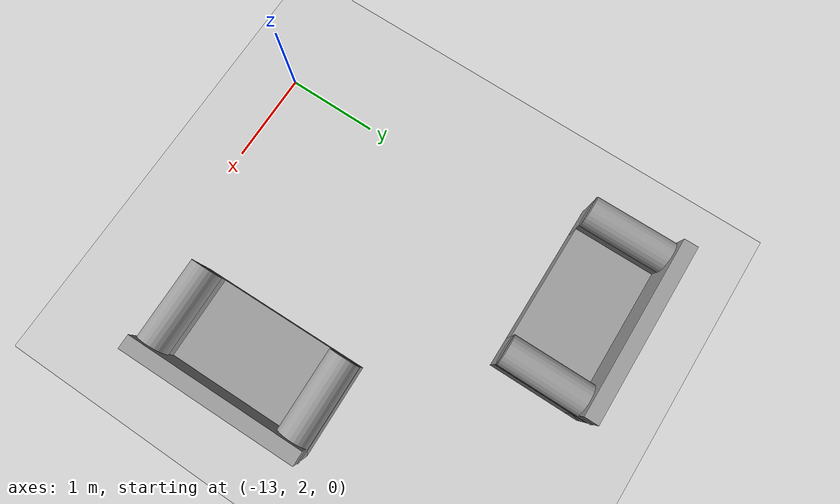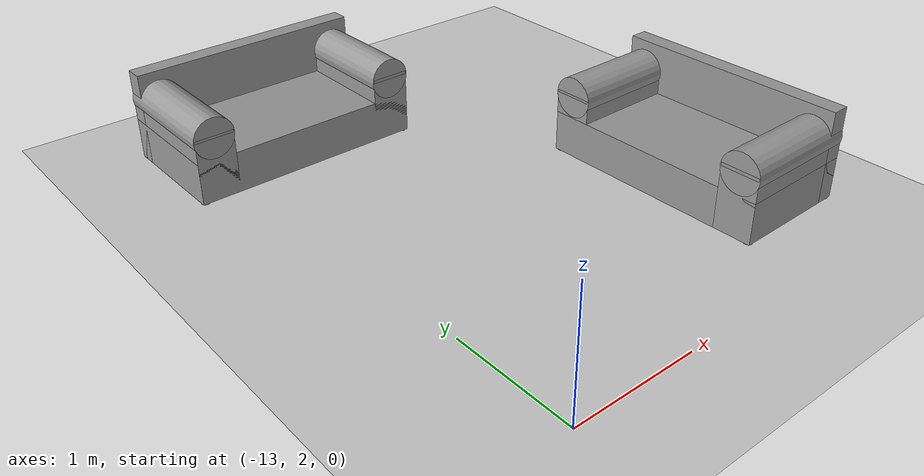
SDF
<sdf version="1.6">
 <world name="default">
  <model name="ground_plane">
   <static>1</static>
   <link name="link">
    <collision name="collision">
     <geometry><plane><normal>0 0 1</normal><size>100 100</size></plane></geometry>
     <surface>
      <contact><collide_bitmask>65535</collide_bitmask></contact>
      <friction><ode><mu>100</mu><mu2>50</mu2></ode></friction>
     </surface>
    </collision>
    <visual name="visual">
     <cast_shadows>0</cast_shadows>
     <geometry><plane><normal>0 0 1</normal><size>100 100</size></plane></geometry>
     <material>
      <script><uri>file://media/materials/scripts/gazebo.material</uri><name>Gazebo/Grey</name></script>
     </material>
    </visual>
   </link>
  </model>
  <model name="couch2.0_2">
   <link name="link_0">
    <pose>0 0.042624 -0.025032 0 -0 0</pose>
    <inertial>
     <mass>0.629351</mass>
     <inertia>
      <ixx>0.0582683</ixx>
      <ixy>0</ixy>
      <ixz>0</ixz>
      <iyy>0.192922</iyy>
      <iyz>0</iyz>
      <izz>0.239546</izz>
     </inertia>
    </inertial>
    <visual name="visual">
     <geometry><box><size>1.88878 1 0.33319</size></box></geometry>
     <material>
      <lighting>1</lighting>
      <script><uri>file://media/materials/scripts/gazebo.material</uri><name>Gazebo/Grey</name></script>
      <shader type="pixel"><normal_map>__default__</normal_map></shader>
      <ambient>0.3 0.3 0.3 1</ambient>
      <diffuse>0.7 0.7 0.7 1</diffuse>
      <specular>0.01 0.01 0.01 1</specular>
      <emissive>0 0 0 1</emissive>
     </material>
    </visual>
    <collision name="collision">
     <geometry><box><size>1.88878 1 0.33319</size></box></geometry>
     <surface>
      <friction>
       <ode><mu>1</mu><mu2>1</mu2><fdir1>0 0 0</fdir1><slip1>0</slip1><slip2>0</slip2></ode>
       <torsional>
        <coefficient>1</coefficient>
        <patch_radius>0</patch_radius>
        <surface_radius>0</surface_radius>
        <use_patch_radius>1</use_patch_radius>
        <ode><slip>0</slip></ode>
       </torsional>
      </friction>
      <bounce><restitution_coefficient>0</restitution_coefficient><threshold>1e+06</threshold></bounce>
      <contact>
       <collide_without_contact>0</collide_without_contact>
       <collide_without_contact_bitmask>1</collide_without_contact_bitmask>
       <collide_bitmask>1</collide_bitmask>
       <ode>
        <soft_cfm>0</soft_cfm>
        <soft_erp>0.2</soft_erp>
        <kp>1e+13</kp>
        <kd>1</kd>
        <max_vel>0.01</max_vel>
        <min_depth>0</min_depth>
       </ode>
       <bullet>
        <split_impulse>1</split_impulse>
        <split_impulse_penetration_threshold>-0.01</split_impulse_penetration_threshold>
        <soft_cfm>0</soft_cfm>
        <soft_erp>0.2</soft_erp>
        <kp>1e+13</kp>
        <kd>1</kd>
       </bullet>
      </contact>
     </surface>
    </collision>
   </link>
   <link name="link_0_clone">
    <pose>0 -0.383981 0.182545 0 -0 0</pose>
    <inertial>
     <mass>0.207466</mass>
     <inertia>
      <ixx>0.0100546</ixx>
      <ixy>0</ixy>
      <ixz>0</ixz>
      <iyy>0.0713599</iyy>
      <iyz>0</iyz>
      <izz>0.0620503</izz>
     </inertia>
    </inertial>
    <visual name="visual">
     <geometry><box><size>1.88878 0.146789 0.748345</size></box></geometry>
     <material>
      <lighting>1</lighting>
      <script><uri>file://media/materials/scripts/gazebo.material</uri><name>Gazebo/Grey</name></script>
      <shader type="pixel"><normal_map>__default__</normal_map></shader>
      <ambient>0.3 0.3 0.3 1</ambient>
      <diffuse>0.7 0.7 0.7 1</diffuse>
      <specular>0.01 0.01 0.01 1</specular>
      <emissive>0 0 0 1</emissive>
     </material>
    </visual>
    <collision name="collision">
     <geometry><box><size>1.88878 0.146789 0.748345</size></box></geometry>
     <surface>
      <friction>
       <ode><mu>1</mu><mu2>1</mu2><fdir1>0 0 0</fdir1><slip1>0</slip1><slip2>0</slip2></ode>
       <torsional>
        <coefficient>1</coefficient>
        <patch_radius>0</patch_radius>
        <surface_radius>0</surface_radius>
        <use_patch_radius>1</use_patch_radius>
        <ode><slip>0</slip></ode>
       </torsional>
      </friction>
      <bounce><restitution_coefficient>0</restitution_coefficient><threshold>1e+06</threshold></bounce>
      <contact>
       <collide_without_contact>0</collide_without_contact>
       <collide_without_contact_bitmask>1</collide_without_contact_bitmask>
       <collide_bitmask>1</collide_bitmask>
       <ode>
        <soft_cfm>0</soft_cfm>
        <soft_erp>0.2</soft_erp>
        <kp>1e+13</kp>
        <kd>1</kd>
        <max_vel>0.01</max_vel>
        <min_depth>0</min_depth>
       </ode>
       <bullet>
        <split_impulse>1</split_impulse>
        <split_impulse_penetration_threshold>-0.01</split_impulse_penetration_threshold>
        <soft_cfm>0</soft_cfm>
        <soft_erp>0.2</soft_erp>
        <kp>1e+13</kp>
        <kd>1</kd>
       </bullet>
      </contact>
     </surface>
    </collision>
   </link>
   <link name="link_1">
    <pose>-0.909335 -0.422322 -0.235214 0 -0 0</pose>
    <inertial>
     <mass>0.000500743</mass>
     <inertia>
      <ixx>5.85623e-07</ixx>
      <ixy>0</ixy>
      <ixz>0</ixz>
      <iyy>5.85623e-07</iyy>
      <iyz>0</iyz>
      <izz>3.07643e-07</izz>
     </inertia>
    </inertial>
    <visual name="visual">
     <geometry><cylinder><radius>0.0350535</radius><length>0.101724</length></cylinder></geometry>
     <material>
      <lighting>1</lighting>
      <script><uri>file://media/materials/scripts/gazebo.material</uri><name>Gazebo/Grey</name></script>
      <shader type="pixel"/>
      <ambient>0.3 0.3 0.3 1</ambient>
      <diffuse>0.7 0.7 0.7 1</diffuse>
      <specular>0.01 0.01 0.01 1</specular>
      <emissive>0 0 0 1</emissive>
     </material>
    </visual>
    <collision name="collision">
     <geometry><cylinder><radius>0.035053</radius><length>0.101724</length></cylinder></geometry>
     <surface>
      <friction>
       <ode><mu>1</mu><mu2>1</mu2><fdir1>0 0 0</fdir1><slip1>0</slip1><slip2>0</slip2></ode>
       <torsional>
        <coefficient>1</coefficient>
        <patch_radius>0</patch_radius>
        <surface_radius>0</surface_radius>
        <use_patch_radius>1</use_patch_radius>
        <ode><slip>0</slip></ode>
       </torsional>
      </friction>
      <bounce><restitution_coefficient>0</restitution_coefficient><threshold>1e+06</threshold></bounce>
      <contact>
       <collide_without_contact>0</collide_without_contact>
       <collide_without_contact_bitmask>1</collide_without_contact_bitmask>
       <collide_bitmask>1</collide_bitmask>
       <ode>
        <soft_cfm>0</soft_cfm>
        <soft_erp>0.2</soft_erp>
        <kp>1e+13</kp>
        <kd>1</kd>
        <max_vel>0.01</max_vel>
        <min_depth>0</min_depth>
       </ode>
       <bullet>
        <split_impulse>1</split_impulse>
        <split_impulse_penetration_threshold>-0.01</split_impulse_penetration_threshold>
        <soft_cfm>0</soft_cfm>
        <soft_erp>0.2</soft_erp>
        <kp>1e+13</kp>
        <kd>1</kd>
       </bullet>
      </contact>
     </surface>
    </collision>
   </link>
   <link name="link_1_clone">
    <pose>-0.909335 0.507571 -0.235214 0 -0 0</pose>
    <inertial>
     <mass>0.000500743</mass>
     <inertia>
      <ixx>5.85623e-07</ixx>
      <ixy>0</ixy>
      <ixz>0</ixz>
      <iyy>5.85623e-07</iyy>
      <iyz>0</iyz>
      <izz>3.07643e-07</izz>
     </inertia>
    </inertial>
    <visual name="visual">
     <geometry><cylinder><radius>0.0350535</radius><length>0.101724</length></cylinder></geometry>
     <material>
      <lighting>1</lighting>
      <script><uri>file://media/materials/scripts/gazebo.material</uri><name>Gazebo/Grey</name></script>
      <shader type="pixel"/>
      <ambient>0.3 0.3 0.3 1</ambient>
      <diffuse>0.7 0.7 0.7 1</diffuse>
      <specular>0.01 0.01 0.01 1</specular>
      <emissive>0 0 0 1</emissive>
     </material>
    </visual>
    <collision name="collision">
     <geometry><cylinder><radius>0.035053</radius><length>0.101724</length></cylinder></geometry>
     <surface>
      <friction>
       <ode><mu>1</mu><mu2>1</mu2><fdir1>0 0 0</fdir1><slip1>0</slip1><slip2>0</slip2></ode>
       <torsional>
        <coefficient>1</coefficient>
        <patch_radius>0</patch_radius>
        <surface_radius>0</surface_radius>
        <use_patch_radius>1</use_patch_radius>
        <ode><slip>0</slip></ode>
       </torsional>
      </friction>
      <bounce><restitution_coefficient>0</restitution_coefficient><threshold>1e+06</threshold></bounce>
      <contact>
       <collide_without_contact>0</collide_without_contact>
       <collide_without_contact_bitmask>1</collide_without_contact_bitmask>
       <collide_bitmask>1</collide_bitmask>
       <ode>
        <soft_cfm>0</soft_cfm>
        <soft_erp>0.2</soft_erp>
        <kp>1e+13</kp>
        <kd>1</kd>
        <max_vel>0.01</max_vel>
        <min_depth>0</min_depth>
       </ode>
       <bullet>
        <split_impulse>1</split_impulse>
        <split_impulse_penetration_threshold>-0.01</split_impulse_penetration_threshold>
        <soft_cfm>0</soft_cfm>
        <soft_erp>0.2</soft_erp>
        <kp>1e+13</kp>
        <kd>1</kd>
       </bullet>
      </contact>
     </surface>
    </collision>
   </link>
   <link name="link_1_clone_0">
    <pose>0.909335 -0.422322 -0.235214 0 -0 0</pose>
    <inertial>
     <mass>0.000500743</mass>
     <inertia>
      <ixx>5.85623e-07</ixx>
      <ixy>0</ixy>
      <ixz>0</ixz>
      <iyy>5.85623e-07</iyy>
      <iyz>0</iyz>
      <izz>3.07643e-07</izz>
     </inertia>
    </inertial>
    <visual name="visual">
     <geometry><cylinder><radius>0.0350535</radius><length>0.101724</length></cylinder></geometry>
     <material>
      <lighting>1</lighting>
      <script><uri>file://media/materials/scripts/gazebo.material</uri><name>Gazebo/Grey</name></script>
      <shader type="pixel"/>
      <ambient>0.3 0.3 0.3 1</ambient>
      <diffuse>0.7 0.7 0.7 1</diffuse>
      <specular>0.01 0.01 0.01 1</specular>
      <emissive>0 0 0 1</emissive>
     </material>
    </visual>
    <collision name="collision">
     <geometry><cylinder><radius>0.035053</radius><length>0.101724</length></cylinder></geometry>
     <surface>
      <friction>
       <ode><mu>1</mu><mu2>1</mu2><fdir1>0 0 0</fdir1><slip1>0</slip1><slip2>0</slip2></ode>
       <torsional>
        <coefficient>1</coefficient>
        <patch_radius>0</patch_radius>
        <surface_radius>0</surface_radius>
        <use_patch_radius>1</use_patch_radius>
        <ode><slip>0</slip></ode>
       </torsional>
      </friction>
      <bounce><restitution_coefficient>0</restitution_coefficient><threshold>1e+06</threshold></bounce>
      <contact>
       <collide_without_contact>0</collide_without_contact>
       <collide_without_contact_bitmask>1</collide_without_contact_bitmask>
       <collide_bitmask>1</collide_bitmask>
       <ode>
        <soft_cfm>0</soft_cfm>
        <soft_erp>0.2</soft_erp>
        <kp>1e+13</kp>
        <kd>1</kd>
        <max_vel>0.01</max_vel>
        <min_depth>0</min_depth>
       </ode>
       <bullet>
        <split_impulse>1</split_impulse>
        <split_impulse_penetration_threshold>-0.01</split_impulse_penetration_threshold>
        <soft_cfm>0</soft_cfm>
        <soft_erp>0.2</soft_erp>
        <kp>1e+13</kp>
        <kd>1</kd>
       </bullet>
      </contact>
     </surface>
    </collision>
   </link>
   <link name="link_1_clone_1">
    <pose>0.909335 0.507571 -0.235214 0 -0 0</pose>
    <inertial>
     <mass>0.000500743</mass>
     <inertia>
      <ixx>5.85623e-07</ixx>
      <ixy>0</ixy>
      <ixz>0</ixz>
      <iyy>5.85623e-07</iyy>
      <iyz>0</iyz>
      <izz>3.07643e-07</izz>
     </inertia>
    </inertial>
    <visual name="visual">
     <geometry><cylinder><radius>0.0350535</radius><length>0.101724</length></cylinder></geometry>
     <material>
      <lighting>1</lighting>
      <script><uri>file://media/materials/scripts/gazebo.material</uri><name>Gazebo/Grey</name></script>
      <shader type="pixel"/>
      <ambient>0.3 0.3 0.3 1</ambient>
      <diffuse>0.7 0.7 0.7 1</diffuse>
      <specular>0.01 0.01 0.01 1</specular>
      <emissive>0 0 0 1</emissive>
     </material>
    </visual>
    <collision name="collision">
     <geometry><cylinder><radius>0.035053</radius><length>0.101724</length></cylinder></geometry>
     <surface>
      <friction>
       <ode><mu>1</mu><mu2>1</mu2><fdir1>0 0 0</fdir1><slip1>0</slip1><slip2>0</slip2></ode>
       <torsional>
        <coefficient>1</coefficient>
        <patch_radius>0</patch_radius>
        <surface_radius>0</surface_radius>
        <use_patch_radius>1</use_patch_radius>
        <ode><slip>0</slip></ode>
       </torsional>
      </friction>
      <bounce><restitution_coefficient>0</restitution_coefficient><threshold>1e+06</threshold></bounce>
      <contact>
       <collide_without_contact>0</collide_without_contact>
       <collide_without_contact_bitmask>1</collide_without_contact_bitmask>
       <collide_bitmask>1</collide_bitmask>
       <ode>
        <soft_cfm>0</soft_cfm>
        <soft_erp>0.2</soft_erp>
        <kp>1e+13</kp>
        <kd>1</kd>
        <max_vel>0.01</max_vel>
        <min_depth>0</min_depth>
       </ode>
       <bullet>
        <split_impulse>1</split_impulse>
        <split_impulse_penetration_threshold>-0.01</split_impulse_penetration_threshold>
        <soft_cfm>0</soft_cfm>
        <soft_erp>0.2</soft_erp>
        <kp>1e+13</kp>
        <kd>1</kd>
       </bullet>
      </contact>
     </surface>
    </collision>
   </link>
   <link name="link_3">
    <pose>-0.787536 0.042624 0.075794 0 -0 0</pose>
    <inertial>
     <mass>0.167781</mass>
     <inertia>
      <ixx>0.0179813</ixx>
      <ixy>0</ixy>
      <ixz>0</ixz>
      <iyy>0.0053755</iyy>
      <iyz>0</iyz>
      <izz>0.0153577</izz>
     </inertia>
    </inertial>
    <visual name="visual">
     <geometry><box><size>0.313705 1 0.534841</size></box></geometry>
     <material>
      <lighting>1</lighting>
      <script><uri>file://media/materials/scripts/gazebo.material</uri><name>Gazebo/Grey</name></script>
      <shader type="pixel"/>
      <ambient>0.3 0.3 0.3 1</ambient>
      <diffuse>0.7 0.7 0.7 1</diffuse>
      <specular>0.01 0.01 0.01 1</specular>
      <emissive>0 0 0 1</emissive>
     </material>
    </visual>
    <collision name="collision">
     <geometry><box><size>0.313705 1 0.534841</size></box></geometry>
     <surface>
      <friction>
       <ode><mu>1</mu><mu2>1</mu2><fdir1>0 0 0</fdir1><slip1>0</slip1><slip2>0</slip2></ode>
       <torsional>
        <coefficient>1</coefficient>
        <patch_radius>0</patch_radius>
        <surface_radius>0</surface_radius>
        <use_patch_radius>1</use_patch_radius>
        <ode><slip>0</slip></ode>
       </torsional>
      </friction>
      <bounce><restitution_coefficient>0</restitution_coefficient><threshold>1e+06</threshold></bounce>
      <contact>
       <collide_without_contact>0</collide_without_contact>
       <collide_without_contact_bitmask>1</collide_without_contact_bitmask>
       <collide_bitmask>1</collide_bitmask>
       <ode>
        <soft_cfm>0</soft_cfm>
        <soft_erp>0.2</soft_erp>
        <kp>1e+13</kp>
        <kd>1</kd>
        <max_vel>0.01</max_vel>
        <min_depth>0</min_depth>
       </ode>
       <bullet>
        <split_impulse>1</split_impulse>
        <split_impulse_penetration_threshold>-0.01</split_impulse_penetration_threshold>
        <soft_cfm>0</soft_cfm>
        <soft_erp>0.2</soft_erp>
        <kp>1e+13</kp>
        <kd>1</kd>
       </bullet>
      </contact>
     </surface>
    </collision>
   </link>
   <link name="link_3_clone">
    <pose>0.787536 0.042624 0.075794 0 -0 0</pose>
    <inertial>
     <mass>0.163893</mass>
     <inertia>
      <ixx>0.0173856</ixx>
      <ixy>0</ixy>
      <ixz>0</ixz>
      <iyy>0.00507196</iyy>
      <iyz>0</iyz>
      <izz>0.0150018</izz>
     </inertia>
    </inertial>
    <visual name="visual">
     <geometry><box><size>0.313705 1 0.522447</size></box></geometry>
     <material>
      <lighting>1</lighting>
      <script><uri>file://media/materials/scripts/gazebo.material</uri><name>Gazebo/Grey</name></script>
      <shader type="pixel"><normal_map>__default__</normal_map></shader>
      <ambient>0.3 0.3 0.3 1</ambient>
      <diffuse>0.7 0.7 0.7 1</diffuse>
      <specular>0.01 0.01 0.01 1</specular>
      <emissive>0 0 0 1</emissive>
     </material>
    </visual>
    <collision name="collision">
     <geometry><box><size>0.313705 1 0.522447</size></box></geometry>
     <surface>
      <friction>
       <ode><mu>1</mu><mu2>1</mu2><fdir1>0 0 0</fdir1><slip1>0</slip1><slip2>0</slip2></ode>
       <torsional>
        <coefficient>1</coefficient>
        <patch_radius>0</patch_radius>
        <surface_radius>0</surface_radius>
        <use_patch_radius>1</use_patch_radius>
        <ode><slip>0</slip></ode>
       </torsional>
      </friction>
      <bounce><restitution_coefficient>0</restitution_coefficient><threshold>1e+06</threshold></bounce>
      <contact>
       <collide_without_contact>0</collide_without_contact>
       <collide_without_contact_bitmask>1</collide_without_contact_bitmask>
       <collide_bitmask>1</collide_bitmask>
       <ode>
        <soft_cfm>0</soft_cfm>
        <soft_erp>0.2</soft_erp>
        <kp>1e+13</kp>
        <kd>1</kd>
        <max_vel>0.01</max_vel>
        <min_depth>0</min_depth>
       </ode>
       <bullet>
        <split_impulse>1</split_impulse>
        <split_impulse_penetration_threshold>-0.01</split_impulse_penetration_threshold>
        <soft_cfm>0</soft_cfm>
        <soft_erp>0.2</soft_erp>
        <kp>1e+13</kp>
        <kd>1</kd>
       </bullet>
      </contact>
     </surface>
    </collision>
   </link>
   <link name="link_4">
    <pose>0.787536 0.042624 0.315876 1.573 -0 0</pose>
    <inertial>
     <mass>0.110343</mass>
     <inertia>
      <ixx>0.00995618</ixx>
      <ixy>0</ixy>
      <ixz>0</ixz>
      <iyy>0.00995618</iyy>
      <iyz>0</iyz>
      <izz>0.00152191</izz>
     </inertia>
     <pose>0 0 0 0 1.51 0</pose>
    </inertial>
    <visual name="visual">
     <geometry><cylinder><radius>0.166088</radius><length>1</length></cylinder></geometry>
     <material>
      <lighting>1</lighting>
      <script><uri>file://media/materials/scripts/gazebo.material</uri><name>Gazebo/Grey</name></script>
      <shader type="pixel"><normal_map>__default__</normal_map></shader>
      <ambient>0.3 0.3 0.3 1</ambient>
      <diffuse>0.7 0.7 0.7 1</diffuse>
      <specular>0.01 0.01 0.01 1</specular>
      <emissive>0 0 0 1</emissive>
     </material>
    </visual>
    <collision name="collision">
     <geometry><cylinder><radius>0.166088</radius><length>1</length></cylinder></geometry>
     <surface>
      <friction>
       <ode><mu>1</mu><mu2>1</mu2><fdir1>0 0 0</fdir1><slip1>0</slip1><slip2>0</slip2></ode>
       <torsional>
        <coefficient>1</coefficient>
        <patch_radius>0</patch_radius>
        <surface_radius>0</surface_radius>
        <use_patch_radius>1</use_patch_radius>
        <ode><slip>0</slip></ode>
       </torsional>
      </friction>
      <bounce><restitution_coefficient>0</restitution_coefficient><threshold>1e+06</threshold></bounce>
      <contact>
       <collide_without_contact>0</collide_without_contact>
       <collide_without_contact_bitmask>1</collide_without_contact_bitmask>
       <collide_bitmask>1</collide_bitmask>
       <ode>
        <soft_cfm>0</soft_cfm>
        <soft_erp>0.2</soft_erp>
        <kp>1e+13</kp>
        <kd>1</kd>
        <max_vel>0.01</max_vel>
        <min_depth>0</min_depth>
       </ode>
       <bullet>
        <split_impulse>1</split_impulse>
        <split_impulse_penetration_threshold>-0.01</split_impulse_penetration_threshold>
        <soft_cfm>0</soft_cfm>
        <soft_erp>0.2</soft_erp>
        <kp>1e+13</kp>
        <kd>1</kd>
       </bullet>
      </contact>
     </surface>
    </collision>
   </link>
   <link name="link_4_clone">
    <pose>-0.787536 0.042624 0.315877 1.573 -0 0</pose>
    <inertial>
     <mass>0.110343</mass>
     <inertia>
      <ixx>0.00995618</ixx>
      <ixy>0</ixy>
      <ixz>0</ixz>
      <iyy>0.00995618</iyy>
      <iyz>0</iyz>
      <izz>0.00152191</izz>
     </inertia>
     <pose>0 0 0 0 1.51 0</pose>
    </inertial>
    <visual name="visual">
     <geometry><cylinder><radius>0.166088</radius><length>1</length></cylinder></geometry>
     <material>
      <lighting>1</lighting>
      <script><uri>file://media/materials/scripts/gazebo.material</uri><name>Gazebo/Grey</name></script>
      <shader type="pixel"><normal_map>__default__</normal_map></shader>
      <ambient>0.3 0.3 0.3 1</ambient>
      <diffuse>0.7 0.7 0.7 1</diffuse>
      <specular>0.01 0.01 0.01 1</specular>
      <emissive>0 0 0 1</emissive>
     </material>
    </visual>
    <collision name="collision">
     <geometry><cylinder><radius>0.166088</radius><length>1</length></cylinder></geometry>
     <surface>
      <friction>
       <ode><mu>1</mu><mu2>1</mu2><fdir1>0 0 0</fdir1><slip1>0</slip1><slip2>0</slip2></ode>
       <torsional>
        <coefficient>1</coefficient>
        <patch_radius>0</patch_radius>
        <surface_radius>0</surface_radius>
        <use_patch_radius>1</use_patch_radius>
        <ode><slip>0</slip></ode>
       </torsional>
      </friction>
      <bounce><restitution_coefficient>0</restitution_coefficient><threshold>1e+06</threshold></bounce>
      <contact>
       <collide_without_contact>0</collide_without_contact>
       <collide_without_contact_bitmask>1</collide_without_contact_bitmask>
       <collide_bitmask>1</collide_bitmask>
       <ode>
        <soft_cfm>0</soft_cfm>
        <soft_erp>0.2</soft_erp>
        <kp>1e+13</kp>
        <kd>1</kd>
        <max_vel>0.01</max_vel>
        <min_depth>0</min_depth>
       </ode>
       <bullet>
        <split_impulse>1</split_impulse>
        <split_impulse_penetration_threshold>-0.01</split_impulse_penetration_threshold>
        <soft_cfm>0</soft_cfm>
        <soft_erp>0.2</soft_erp>
        <kp>1e+13</kp>
        <kd>1</kd>
       </bullet>
      </contact>
     </surface>
    </collision>
   </link>
   <joint name="link_0_JOINT_0" type="fixed">
    <parent>link_0</parent>
    <child>link_1</child>
    <physics>
     <ode><limit><cfm>0</cfm><erp>0.2</erp></limit><suspension><cfm>0</cfm><erp>0.2</erp></suspension></ode>
    </physics>
   </joint>
   <joint name="link_0_JOINT_1" type="fixed">
    <parent>link_0</parent>
    <child>link_1_clone</child>
    <physics>
     <ode><limit><cfm>0</cfm><erp>0.2</erp></limit><suspension><cfm>0</cfm><erp>0.2</erp></suspension></ode>
    </physics>
   </joint>
   <joint name="link_0_JOINT_2" type="fixed">
    <parent>link_0</parent>
    <child>link_1_clone_0</child>
    <physics>
     <ode><limit><cfm>0</cfm><erp>0.2</erp></limit><suspension><cfm>0</cfm><erp>0.2</erp></suspension></ode>
    </physics>
   </joint>
   <joint name="link_0_JOINT_3" type="fixed">
    <parent>link_0</parent>
    <child>link_1_clone_1</child>
    <physics>
     <ode><limit><cfm>0</cfm><erp>0.2</erp></limit><suspension><cfm>0</cfm><erp>0.2</erp></suspension></ode>
    </physics>
   </joint>
   <joint name="link_0_JOINT_4" type="fixed">
    <parent>link_0</parent>
    <child>link_3</child>
    <physics>
     <ode><limit><cfm>0</cfm><erp>0.2</erp></limit><suspension><cfm>0</cfm><erp>0.2</erp></suspension></ode>
    </physics>
   </joint>
   <joint name="link_0_JOINT_5" type="fixed">
    <parent>link_0</parent>
    <child>link_3_clone</child>
    <physics>
     <ode><limit><cfm>0</cfm><erp>0.2</erp></limit><suspension><cfm>0</cfm><erp>0.2</erp></suspension></ode>
    </physics>
   </joint>
   <joint name="link_0_JOINT_9" type="fixed">
    <parent>link_0</parent>
    <child>link_0_clone</child>
    <physics>
     <ode><limit><cfm>0</cfm><erp>0.2</erp></limit><suspension><cfm>0</cfm><erp>0.2</erp></suspension></ode>
    </physics>
   </joint>
   <joint name="link_4_JOINT_7" type="fixed">
    <parent>link_4</parent>
    <child>link_3_clone</child>
    <physics>
     <ode><limit><cfm>0</cfm><erp>0.2</erp></limit><suspension><cfm>0</cfm><erp>0.2</erp></suspension></ode>
    </physics>
   </joint>
   <joint name="link_4_clone_JOINT_8" type="fixed">
    <parent>link_3</parent>
    <child>link_4_clone</child>
    <physics>
     <ode><limit><cfm>0</cfm><erp>0.2</erp></limit><suspension><cfm>0</cfm><erp>0.2</erp></suspension></ode>
    </physics>
   </joint>
   <static>0</static>
   <pose>-12.5118 5.95039 0.191632 0 5e-06 -3.13245</pose>
  </model>
  <model name="couch2.0_4">
   <link name="link_0">
    <pose>0 0.042624 -0.025032 0 -0 0</pose>
    <inertial>
     <mass>0.629351</mass>
     <inertia>
      <ixx>0.0582683</ixx>
      <ixy>0</ixy>
      <ixz>0</ixz>
      <iyy>0.192922</iyy>
      <iyz>0</iyz>
      <izz>0.239546</izz>
     </inertia>
    </inertial>
    <visual name="visual">
     <geometry><box><size>1.88878 1 0.33319</size></box></geometry>
     <material>
      <lighting>1</lighting>
      <script><uri>file://media/materials/scripts/gazebo.material</uri><name>Gazebo/Grey</name></script>
      <shader type="pixel"><normal_map>__default__</normal_map></shader>
      <ambient>0.3 0.3 0.3 1</ambient>
      <diffuse>0.7 0.7 0.7 1</diffuse>
      <specular>0.01 0.01 0.01 1</specular>
      <emissive>0 0 0 1</emissive>
     </material>
    </visual>
    <collision name="collision">
     <geometry><box><size>1.88878 1 0.33319</size></box></geometry>
     <surface>
      <friction>
       <ode><mu>1</mu><mu2>1</mu2><fdir1>0 0 0</fdir1><slip1>0</slip1><slip2>0</slip2></ode>
       <torsional>
        <coefficient>1</coefficient>
        <patch_radius>0</patch_radius>
        <surface_radius>0</surface_radius>
        <use_patch_radius>1</use_patch_radius>
        <ode><slip>0</slip></ode>
       </torsional>
      </friction>
      <bounce><restitution_coefficient>0</restitution_coefficient><threshold>1e+06</threshold></bounce>
      <contact>
       <collide_without_contact>0</collide_without_contact>
       <collide_without_contact_bitmask>1</collide_without_contact_bitmask>
       <collide_bitmask>1</collide_bitmask>
       <ode>
        <soft_cfm>0</soft_cfm>
        <soft_erp>0.2</soft_erp>
        <kp>1e+13</kp>
        <kd>1</kd>
        <max_vel>0.01</max_vel>
        <min_depth>0</min_depth>
       </ode>
       <bullet>
        <split_impulse>1</split_impulse>
        <split_impulse_penetration_threshold>-0.01</split_impulse_penetration_threshold>
        <soft_cfm>0</soft_cfm>
        <soft_erp>0.2</soft_erp>
        <kp>1e+13</kp>
        <kd>1</kd>
       </bullet>
      </contact>
     </surface>
    </collision>
   </link>
   <link name="link_0_clone">
    <pose>0 -0.383981 0.182545 0 -0 0</pose>
    <inertial>
     <mass>0.207466</mass>
     <inertia>
      <ixx>0.0100546</ixx>
      <ixy>0</ixy>
      <ixz>0</ixz>
      <iyy>0.0713599</iyy>
      <iyz>0</iyz>
      <izz>0.0620503</izz>
     </inertia>
    </inertial>
    <visual name="visual">
     <geometry><box><size>1.88878 0.146789 0.748345</size></box></geometry>
     <material>
      <lighting>1</lighting>
      <script><uri>file://media/materials/scripts/gazebo.material</uri><name>Gazebo/Grey</name></script>
      <shader type="pixel"><normal_map>__default__</normal_map></shader>
      <ambient>0.3 0.3 0.3 1</ambient>
      <diffuse>0.7 0.7 0.7 1</diffuse>
      <specular>0.01 0.01 0.01 1</specular>
      <emissive>0 0 0 1</emissive>
     </material>
    </visual>
    <collision name="collision">
     <geometry><box><size>1.88878 0.146789 0.748345</size></box></geometry>
     <surface>
      <friction>
       <ode><mu>1</mu><mu2>1</mu2><fdir1>0 0 0</fdir1><slip1>0</slip1><slip2>0</slip2></ode>
       <torsional>
        <coefficient>1</coefficient>
        <patch_radius>0</patch_radius>
        <surface_radius>0</surface_radius>
        <use_patch_radius>1</use_patch_radius>
        <ode><slip>0</slip></ode>
       </torsional>
      </friction>
      <bounce><restitution_coefficient>0</restitution_coefficient><threshold>1e+06</threshold></bounce>
      <contact>
       <collide_without_contact>0</collide_without_contact>
       <collide_without_contact_bitmask>1</collide_without_contact_bitmask>
       <collide_bitmask>1</collide_bitmask>
       <ode>
        <soft_cfm>0</soft_cfm>
        <soft_erp>0.2</soft_erp>
        <kp>1e+13</kp>
        <kd>1</kd>
        <max_vel>0.01</max_vel>
        <min_depth>0</min_depth>
       </ode>
       <bullet>
        <split_impulse>1</split_impulse>
        <split_impulse_penetration_threshold>-0.01</split_impulse_penetration_threshold>
        <soft_cfm>0</soft_cfm>
        <soft_erp>0.2</soft_erp>
        <kp>1e+13</kp>
        <kd>1</kd>
       </bullet>
      </contact>
     </surface>
    </collision>
   </link>
   <link name="link_1">
    <pose>-0.909335 -0.422322 -0.235214 0 -0 0</pose>
    <inertial>
     <mass>0.000500743</mass>
     <inertia>
      <ixx>5.85623e-07</ixx>
      <ixy>0</ixy>
      <ixz>0</ixz>
      <iyy>5.85623e-07</iyy>
      <iyz>0</iyz>
      <izz>3.07643e-07</izz>
     </inertia>
    </inertial>
    <visual name="visual">
     <geometry><cylinder><radius>0.0350535</radius><length>0.101724</length></cylinder></geometry>
     <material>
      <lighting>1</lighting>
      <script><uri>file://media/materials/scripts/gazebo.material</uri><name>Gazebo/Grey</name></script>
      <shader type="pixel"/>
      <ambient>0.3 0.3 0.3 1</ambient>
      <diffuse>0.7 0.7 0.7 1</diffuse>
      <specular>0.01 0.01 0.01 1</specular>
      <emissive>0 0 0 1</emissive>
     </material>
    </visual>
    <collision name="collision">
     <geometry><cylinder><radius>0.035053</radius><length>0.101724</length></cylinder></geometry>
     <surface>
      <friction>
       <ode><mu>1</mu><mu2>1</mu2><fdir1>0 0 0</fdir1><slip1>0</slip1><slip2>0</slip2></ode>
       <torsional>
        <coefficient>1</coefficient>
        <patch_radius>0</patch_radius>
        <surface_radius>0</surface_radius>
        <use_patch_radius>1</use_patch_radius>
        <ode><slip>0</slip></ode>
       </torsional>
      </friction>
      <bounce><restitution_coefficient>0</restitution_coefficient><threshold>1e+06</threshold></bounce>
      <contact>
       <collide_without_contact>0</collide_without_contact>
       <collide_without_contact_bitmask>1</collide_without_contact_bitmask>
       <collide_bitmask>1</collide_bitmask>
       <ode>
        <soft_cfm>0</soft_cfm>
        <soft_erp>0.2</soft_erp>
        <kp>1e+13</kp>
        <kd>1</kd>
        <max_vel>0.01</max_vel>
        <min_depth>0</min_depth>
       </ode>
       <bullet>
        <split_impulse>1</split_impulse>
        <split_impulse_penetration_threshold>-0.01</split_impulse_penetration_threshold>
        <soft_cfm>0</soft_cfm>
        <soft_erp>0.2</soft_erp>
        <kp>1e+13</kp>
        <kd>1</kd>
       </bullet>
      </contact>
     </surface>
    </collision>
   </link>
   <link name="link_1_clone">
    <pose>-0.909335 0.507571 -0.235214 0 -0 0</pose>
    <inertial>
     <mass>0.000500743</mass>
     <inertia>
      <ixx>5.85623e-07</ixx>
      <ixy>0</ixy>
      <ixz>0</ixz>
      <iyy>5.85623e-07</iyy>
      <iyz>0</iyz>
      <izz>3.07643e-07</izz>
     </inertia>
    </inertial>
    <visual name="visual">
     <geometry><cylinder><radius>0.0350535</radius><length>0.101724</length></cylinder></geometry>
     <material>
      <lighting>1</lighting>
      <script><uri>file://media/materials/scripts/gazebo.material</uri><name>Gazebo/Grey</name></script>
      <shader type="pixel"/>
      <ambient>0.3 0.3 0.3 1</ambient>
      <diffuse>0.7 0.7 0.7 1</diffuse>
      <specular>0.01 0.01 0.01 1</specular>
      <emissive>0 0 0 1</emissive>
     </material>
    </visual>
    <collision name="collision">
     <geometry><cylinder><radius>0.035053</radius><length>0.101724</length></cylinder></geometry>
     <surface>
      <friction>
       <ode><mu>1</mu><mu2>1</mu2><fdir1>0 0 0</fdir1><slip1>0</slip1><slip2>0</slip2></ode>
       <torsional>
        <coefficient>1</coefficient>
        <patch_radius>0</patch_radius>
        <surface_radius>0</surface_radius>
        <use_patch_radius>1</use_patch_radius>
        <ode><slip>0</slip></ode>
       </torsional>
      </friction>
      <bounce><restitution_coefficient>0</restitution_coefficient><threshold>1e+06</threshold></bounce>
      <contact>
       <collide_without_contact>0</collide_without_contact>
       <collide_without_contact_bitmask>1</collide_without_contact_bitmask>
       <collide_bitmask>1</collide_bitmask>
       <ode>
        <soft_cfm>0</soft_cfm>
        <soft_erp>0.2</soft_erp>
        <kp>1e+13</kp>
        <kd>1</kd>
        <max_vel>0.01</max_vel>
        <min_depth>0</min_depth>
       </ode>
       <bullet>
        <split_impulse>1</split_impulse>
        <split_impulse_penetration_threshold>-0.01</split_impulse_penetration_threshold>
        <soft_cfm>0</soft_cfm>
        <soft_erp>0.2</soft_erp>
        <kp>1e+13</kp>
        <kd>1</kd>
       </bullet>
      </contact>
     </surface>
    </collision>
   </link>
   <link name="link_1_clone_0">
    <pose>0.909335 -0.422322 -0.235214 0 -0 0</pose>
    <inertial>
     <mass>0.000500743</mass>
     <inertia>
      <ixx>5.85623e-07</ixx>
      <ixy>0</ixy>
      <ixz>0</ixz>
      <iyy>5.85623e-07</iyy>
      <iyz>0</iyz>
      <izz>3.07643e-07</izz>
     </inertia>
    </inertial>
    <visual name="visual">
     <geometry><cylinder><radius>0.0350535</radius><length>0.101724</length></cylinder></geometry>
     <material>
      <lighting>1</lighting>
      <script><uri>file://media/materials/scripts/gazebo.material</uri><name>Gazebo/Grey</name></script>
      <shader type="pixel"/>
      <ambient>0.3 0.3 0.3 1</ambient>
      <diffuse>0.7 0.7 0.7 1</diffuse>
      <specular>0.01 0.01 0.01 1</specular>
      <emissive>0 0 0 1</emissive>
     </material>
    </visual>
    <collision name="collision">
     <geometry><cylinder><radius>0.035053</radius><length>0.101724</length></cylinder></geometry>
     <surface>
      <friction>
       <ode><mu>1</mu><mu2>1</mu2><fdir1>0 0 0</fdir1><slip1>0</slip1><slip2>0</slip2></ode>
       <torsional>
        <coefficient>1</coefficient>
        <patch_radius>0</patch_radius>
        <surface_radius>0</surface_radius>
        <use_patch_radius>1</use_patch_radius>
        <ode><slip>0</slip></ode>
       </torsional>
      </friction>
      <bounce><restitution_coefficient>0</restitution_coefficient><threshold>1e+06</threshold></bounce>
      <contact>
       <collide_without_contact>0</collide_without_contact>
       <collide_without_contact_bitmask>1</collide_without_contact_bitmask>
       <collide_bitmask>1</collide_bitmask>
       <ode>
        <soft_cfm>0</soft_cfm>
        <soft_erp>0.2</soft_erp>
        <kp>1e+13</kp>
        <kd>1</kd>
        <max_vel>0.01</max_vel>
        <min_depth>0</min_depth>
       </ode>
       <bullet>
        <split_impulse>1</split_impulse>
        <split_impulse_penetration_threshold>-0.01</split_impulse_penetration_threshold>
        <soft_cfm>0</soft_cfm>
        <soft_erp>0.2</soft_erp>
        <kp>1e+13</kp>
        <kd>1</kd>
       </bullet>
      </contact>
     </surface>
    </collision>
   </link>
   <link name="link_1_clone_1">
    <pose>0.909335 0.507571 -0.235214 0 -0 0</pose>
    <inertial>
     <mass>0.000500743</mass>
     <inertia>
      <ixx>5.85623e-07</ixx>
      <ixy>0</ixy>
      <ixz>0</ixz>
      <iyy>5.85623e-07</iyy>
      <iyz>0</iyz>
      <izz>3.07643e-07</izz>
     </inertia>
    </inertial>
    <visual name="visual">
     <geometry><cylinder><radius>0.0350535</radius><length>0.101724</length></cylinder></geometry>
     <material>
      <lighting>1</lighting>
      <script><uri>file://media/materials/scripts/gazebo.material</uri><name>Gazebo/Grey</name></script>
      <shader type="pixel"/>
      <ambient>0.3 0.3 0.3 1</ambient>
      <diffuse>0.7 0.7 0.7 1</diffuse>
      <specular>0.01 0.01 0.01 1</specular>
      <emissive>0 0 0 1</emissive>
     </material>
    </visual>
    <collision name="collision">
     <geometry><cylinder><radius>0.035053</radius><length>0.101724</length></cylinder></geometry>
     <surface>
      <friction>
       <ode><mu>1</mu><mu2>1</mu2><fdir1>0 0 0</fdir1><slip1>0</slip1><slip2>0</slip2></ode>
       <torsional>
        <coefficient>1</coefficient>
        <patch_radius>0</patch_radius>
        <surface_radius>0</surface_radius>
        <use_patch_radius>1</use_patch_radius>
        <ode><slip>0</slip></ode>
       </torsional>
      </friction>
      <bounce><restitution_coefficient>0</restitution_coefficient><threshold>1e+06</threshold></bounce>
      <contact>
       <collide_without_contact>0</collide_without_contact>
       <collide_without_contact_bitmask>1</collide_without_contact_bitmask>
       <collide_bitmask>1</collide_bitmask>
       <ode>
        <soft_cfm>0</soft_cfm>
        <soft_erp>0.2</soft_erp>
        <kp>1e+13</kp>
        <kd>1</kd>
        <max_vel>0.01</max_vel>
        <min_depth>0</min_depth>
       </ode>
       <bullet>
        <split_impulse>1</split_impulse>
        <split_impulse_penetration_threshold>-0.01</split_impulse_penetration_threshold>
        <soft_cfm>0</soft_cfm>
        <soft_erp>0.2</soft_erp>
        <kp>1e+13</kp>
        <kd>1</kd>
       </bullet>
      </contact>
     </surface>
    </collision>
   </link>
   <link name="link_3">
    <pose>-0.787536 0.042624 0.075794 0 -0 0</pose>
    <inertial>
     <mass>0.167781</mass>
     <inertia>
      <ixx>0.0179813</ixx>
      <ixy>0</ixy>
      <ixz>0</ixz>
      <iyy>0.0053755</iyy>
      <iyz>0</iyz>
      <izz>0.0153577</izz>
     </inertia>
    </inertial>
    <visual name="visual">
     <geometry><box><size>0.313705 1 0.534841</size></box></geometry>
     <material>
      <lighting>1</lighting>
      <script><uri>file://media/materials/scripts/gazebo.material</uri><name>Gazebo/Grey</name></script>
      <shader type="pixel"/>
      <ambient>0.3 0.3 0.3 1</ambient>
      <diffuse>0.7 0.7 0.7 1</diffuse>
      <specular>0.01 0.01 0.01 1</specular>
      <emissive>0 0 0 1</emissive>
     </material>
    </visual>
    <collision name="collision">
     <geometry><box><size>0.313705 1 0.534841</size></box></geometry>
     <surface>
      <friction>
       <ode><mu>1</mu><mu2>1</mu2><fdir1>0 0 0</fdir1><slip1>0</slip1><slip2>0</slip2></ode>
       <torsional>
        <coefficient>1</coefficient>
        <patch_radius>0</patch_radius>
        <surface_radius>0</surface_radius>
        <use_patch_radius>1</use_patch_radius>
        <ode><slip>0</slip></ode>
       </torsional>
      </friction>
      <bounce><restitution_coefficient>0</restitution_coefficient><threshold>1e+06</threshold></bounce>
      <contact>
       <collide_without_contact>0</collide_without_contact>
       <collide_without_contact_bitmask>1</collide_without_contact_bitmask>
       <collide_bitmask>1</collide_bitmask>
       <ode>
        <soft_cfm>0</soft_cfm>
        <soft_erp>0.2</soft_erp>
        <kp>1e+13</kp>
        <kd>1</kd>
        <max_vel>0.01</max_vel>
        <min_depth>0</min_depth>
       </ode>
       <bullet>
        <split_impulse>1</split_impulse>
        <split_impulse_penetration_threshold>-0.01</split_impulse_penetration_threshold>
        <soft_cfm>0</soft_cfm>
        <soft_erp>0.2</soft_erp>
        <kp>1e+13</kp>
        <kd>1</kd>
       </bullet>
      </contact>
     </surface>
    </collision>
   </link>
   <link name="link_3_clone">
    <pose>0.787536 0.042624 0.075794 0 -0 0</pose>
    <inertial>
     <mass>0.163893</mass>
     <inertia>
      <ixx>0.0173856</ixx>
      <ixy>0</ixy>
      <ixz>0</ixz>
      <iyy>0.00507196</iyy>
      <iyz>0</iyz>
      <izz>0.0150018</izz>
     </inertia>
    </inertial>
    <visual name="visual">
     <geometry><box><size>0.313705 1 0.522447</size></box></geometry>
     <material>
      <lighting>1</lighting>
      <script><uri>file://media/materials/scripts/gazebo.material</uri><name>Gazebo/Grey</name></script>
      <shader type="pixel"><normal_map>__default__</normal_map></shader>
      <ambient>0.3 0.3 0.3 1</ambient>
      <diffuse>0.7 0.7 0.7 1</diffuse>
      <specular>0.01 0.01 0.01 1</specular>
      <emissive>0 0 0 1</emissive>
     </material>
    </visual>
    <collision name="collision">
     <geometry><box><size>0.313705 1 0.522447</size></box></geometry>
     <surface>
      <friction>
       <ode><mu>1</mu><mu2>1</mu2><fdir1>0 0 0</fdir1><slip1>0</slip1><slip2>0</slip2></ode>
       <torsional>
        <coefficient>1</coefficient>
        <patch_radius>0</patch_radius>
        <surface_radius>0</surface_radius>
        <use_patch_radius>1</use_patch_radius>
        <ode><slip>0</slip></ode>
       </torsional>
      </friction>
      <bounce><restitution_coefficient>0</restitution_coefficient><threshold>1e+06</threshold></bounce>
      <contact>
       <collide_without_contact>0</collide_without_contact>
       <collide_without_contact_bitmask>1</collide_without_contact_bitmask>
       <collide_bitmask>1</collide_bitmask>
       <ode>
        <soft_cfm>0</soft_cfm>
        <soft_erp>0.2</soft_erp>
        <kp>1e+13</kp>
        <kd>1</kd>
        <max_vel>0.01</max_vel>
        <min_depth>0</min_depth>
       </ode>
       <bullet>
        <split_impulse>1</split_impulse>
        <split_impulse_penetration_threshold>-0.01</split_impulse_penetration_threshold>
        <soft_cfm>0</soft_cfm>
        <soft_erp>0.2</soft_erp>
        <kp>1e+13</kp>
        <kd>1</kd>
       </bullet>
      </contact>
     </surface>
    </collision>
   </link>
   <link name="link_4">
    <pose>0.787536 0.042624 0.315876 1.573 -0 0</pose>
    <inertial>
     <mass>0.110343</mass>
     <inertia>
      <ixx>0.00995618</ixx>
      <ixy>0</ixy>
      <ixz>0</ixz>
      <iyy>0.00995618</iyy>
      <iyz>0</iyz>
      <izz>0.00152191</izz>
     </inertia>
     <pose>0 0 0 0 1.51 0</pose>
    </inertial>
    <visual name="visual">
     <geometry><cylinder><radius>0.166088</radius><length>1</length></cylinder></geometry>
     <material>
      <lighting>1</lighting>
      <script><uri>file://media/materials/scripts/gazebo.material</uri><name>Gazebo/Grey</name></script>
      <shader type="pixel"><normal_map>__default__</normal_map></shader>
      <ambient>0.3 0.3 0.3 1</ambient>
      <diffuse>0.7 0.7 0.7 1</diffuse>
      <specular>0.01 0.01 0.01 1</specular>
      <emissive>0 0 0 1</emissive>
     </material>
    </visual>
    <collision name="collision">
     <geometry><cylinder><radius>0.166088</radius><length>1</length></cylinder></geometry>
     <surface>
      <friction>
       <ode><mu>1</mu><mu2>1</mu2><fdir1>0 0 0</fdir1><slip1>0</slip1><slip2>0</slip2></ode>
       <torsional>
        <coefficient>1</coefficient>
        <patch_radius>0</patch_radius>
        <surface_radius>0</surface_radius>
        <use_patch_radius>1</use_patch_radius>
        <ode><slip>0</slip></ode>
       </torsional>
      </friction>
      <bounce><restitution_coefficient>0</restitution_coefficient><threshold>1e+06</threshold></bounce>
      <contact>
       <collide_without_contact>0</collide_without_contact>
       <collide_without_contact_bitmask>1</collide_without_contact_bitmask>
       <collide_bitmask>1</collide_bitmask>
       <ode>
        <soft_cfm>0</soft_cfm>
        <soft_erp>0.2</soft_erp>
        <kp>1e+13</kp>
        <kd>1</kd>
        <max_vel>0.01</max_vel>
        <min_depth>0</min_depth>
       </ode>
       <bullet>
        <split_impulse>1</split_impulse>
        <split_impulse_penetration_threshold>-0.01</split_impulse_penetration_threshold>
        <soft_cfm>0</soft_cfm>
        <soft_erp>0.2</soft_erp>
        <kp>1e+13</kp>
        <kd>1</kd>
       </bullet>
      </contact>
     </surface>
    </collision>
   </link>
   <link name="link_4_clone">
    <pose>-0.787536 0.042624 0.315877 1.573 -0 0</pose>
    <inertial>
     <mass>0.110343</mass>
     <inertia>
      <ixx>0.00995618</ixx>
      <ixy>0</ixy>
      <ixz>0</ixz>
      <iyy>0.00995618</iyy>
      <iyz>0</iyz>
      <izz>0.00152191</izz>
     </inertia>
     <pose>0 0 0 0 1.51 0</pose>
    </inertial>
    <visual name="visual">
     <geometry><cylinder><radius>0.166088</radius><length>1</length></cylinder></geometry>
     <material>
      <lighting>1</lighting>
      <script><uri>file://media/materials/scripts/gazebo.material</uri><name>Gazebo/Grey</name></script>
      <shader type="pixel"><normal_map>__default__</normal_map></shader>
      <ambient>0.3 0.3 0.3 1</ambient>
      <diffuse>0.7 0.7 0.7 1</diffuse>
      <specular>0.01 0.01 0.01 1</specular>
      <emissive>0 0 0 1</emissive>
     </material>
    </visual>
    <collision name="collision">
     <geometry><cylinder><radius>0.166088</radius><length>1</length></cylinder></geometry>
     <surface>
      <friction>
       <ode><mu>1</mu><mu2>1</mu2><fdir1>0 0 0</fdir1><slip1>0</slip1><slip2>0</slip2></ode>
       <torsional>
        <coefficient>1</coefficient>
        <patch_radius>0</patch_radius>
        <surface_radius>0</surface_radius>
        <use_patch_radius>1</use_patch_radius>
        <ode><slip>0</slip></ode>
       </torsional>
      </friction>
      <bounce><restitution_coefficient>0</restitution_coefficient><threshold>1e+06</threshold></bounce>
      <contact>
       <collide_without_contact>0</collide_without_contact>
       <collide_without_contact_bitmask>1</collide_without_contact_bitmask>
       <collide_bitmask>1</collide_bitmask>
       <ode>
        <soft_cfm>0</soft_cfm>
        <soft_erp>0.2</soft_erp>
        <kp>1e+13</kp>
        <kd>1</kd>
        <max_vel>0.01</max_vel>
        <min_depth>0</min_depth>
       </ode>
       <bullet>
        <split_impulse>1</split_impulse>
        <split_impulse_penetration_threshold>-0.01</split_impulse_penetration_threshold>
        <soft_cfm>0</soft_cfm>
        <soft_erp>0.2</soft_erp>
        <kp>1e+13</kp>
        <kd>1</kd>
       </bullet>
      </contact>
     </surface>
    </collision>
   </link>
   <joint name="link_0_JOINT_0" type="fixed">
    <parent>link_0</parent>
    <child>link_1</child>
    <physics>
     <ode><limit><cfm>0</cfm><erp>0.2</erp></limit><suspension><cfm>0</cfm><erp>0.2</erp></suspension></ode>
    </physics>
   </joint>
   <joint name="link_0_JOINT_1" type="fixed">
    <parent>link_0</parent>
    <child>link_1_clone</child>
    <physics>
     <ode><limit><cfm>0</cfm><erp>0.2</erp></limit><suspension><cfm>0</cfm><erp>0.2</erp></suspension></ode>
    </physics>
   </joint>
   <joint name="link_0_JOINT_2" type="fixed">
    <parent>link_0</parent>
    <child>link_1_clone_0</child>
    <physics>
     <ode><limit><cfm>0</cfm><erp>0.2</erp></limit><suspension><cfm>0</cfm><erp>0.2</erp></suspension></ode>
    </physics>
   </joint>
   <joint name="link_0_JOINT_3" type="fixed">
    <parent>link_0</parent>
    <child>link_1_clone_1</child>
    <physics>
     <ode><limit><cfm>0</cfm><erp>0.2</erp></limit><suspension><cfm>0</cfm><erp>0.2</erp></suspension></ode>
    </physics>
   </joint>
   <joint name="link_0_JOINT_4" type="fixed">
    <parent>link_0</parent>
    <child>link_3</child>
    <physics>
     <ode><limit><cfm>0</cfm><erp>0.2</erp></limit><suspension><cfm>0</cfm><erp>0.2</erp></suspension></ode>
    </physics>
   </joint>
   <joint name="link_0_JOINT_5" type="fixed">
    <parent>link_0</parent>
    <child>link_3_clone</child>
    <physics>
     <ode><limit><cfm>0</cfm><erp>0.2</erp></limit><suspension><cfm>0</cfm><erp>0.2</erp></suspension></ode>
    </physics>
   </joint>
   <joint name="link_0_JOINT_9" type="fixed">
    <parent>link_0</parent>
    <child>link_0_clone</child>
    <physics>
     <ode><limit><cfm>0</cfm><erp>0.2</erp></limit><suspension><cfm>0</cfm><erp>0.2</erp></suspension></ode>
    </physics>
   </joint>
   <joint name="link_4_JOINT_7" type="fixed">
    <parent>link_4</parent>
    <child>link_3_clone</child>
    <physics>
     <ode><limit><cfm>0</cfm><erp>0.2</erp></limit><suspension><cfm>0</cfm><erp>0.2</erp></suspension></ode>
    </physics>
   </joint>
   <joint name="link_4_clone_JOINT_8" type="fixed">
    <parent>link_3</parent>
    <child>link_4_clone</child>
    <physics>
     <ode><limit><cfm>0</cfm><erp>0.2</erp></limit><suspension><cfm>0</cfm><erp>0.2</erp></suspension></ode>
    </physics>
   </joint>
   <static>0</static>
   <pose>-10.2828 3.42825 0.191632 0 5e-06 1.5881</pose>
  </model>
 </world>
</sdf>
